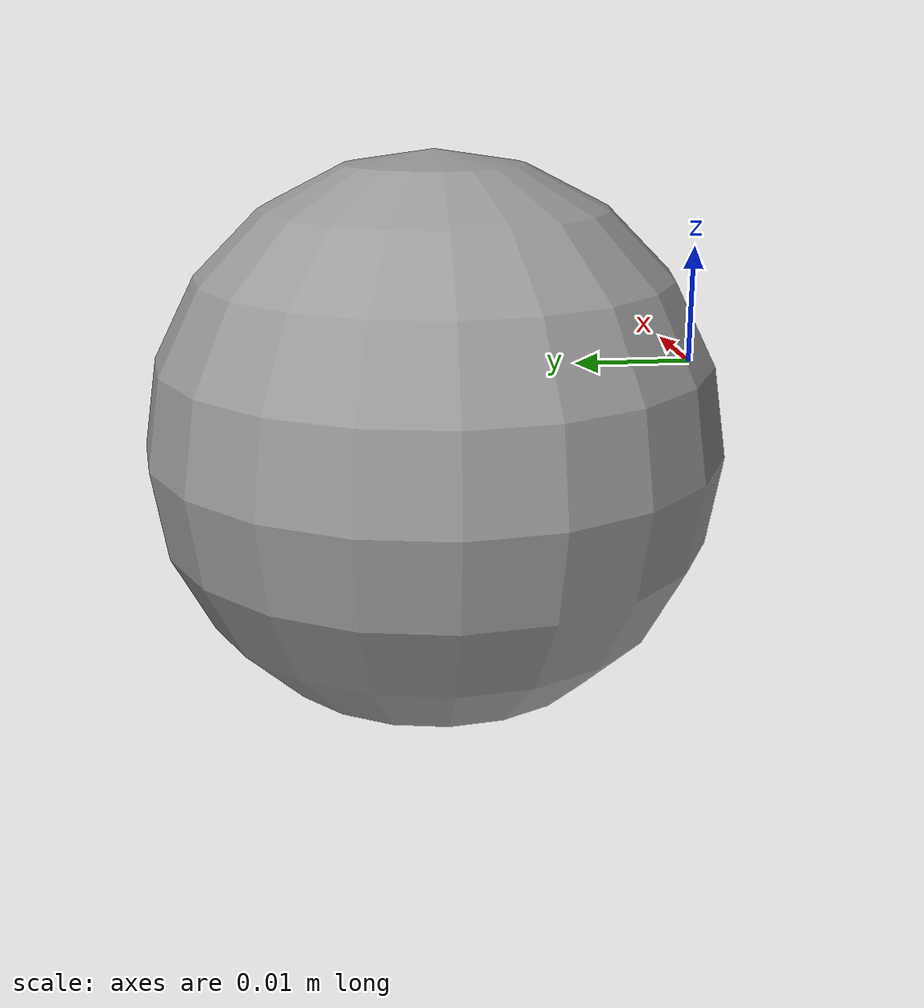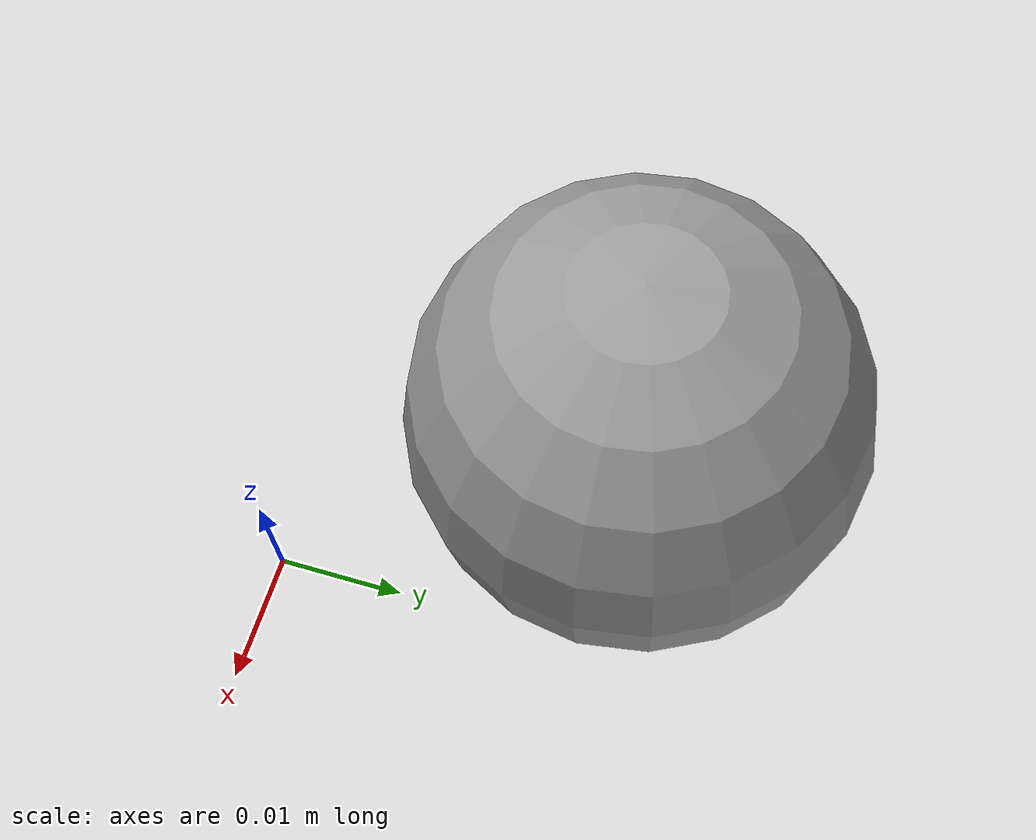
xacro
<?xml version="1.0"?>
<robot name="servbot" xmlns:xacro="http://www.ros.org/wiki/xacro">

  <!-- Base link -->
  <link name="base_link"/>
  <link name="left_wheel_link"/>
  <link name="right_wheel_link"/>

  <!-- Left wheel joint -->
  <joint name="left_wheel_joint" type="continuous">
    <parent link="base_link"/>
    <child link="left_wheel_link"/>
    <origin xyz="-0.054 -0.121  0" rpy="0 0 0"/>
    <axis xyz="0 1 0"/>
  </joint>

  <!-- Right wheel joint -->
  <joint name="right_wheel_joint" type="continuous">
    <parent link="base_link"/>
    <child link="right_wheel_link"/>
    <origin xyz="-0.054 0.121 0" rpy="0 0 0"/>
    <axis xyz="0 1 0"/>
  </joint>

  <link name="imu_link">
    <visual>
      <origin xyz="-0.021 0.024 0" rpy="0 0 0"/>
      <geometry>
        <sphere radius="0.02"/>
      </geometry>
      <material name="gray"/>
    </visual>
  </link>

  <joint name="imu_joint" type="fixed">
    <parent link="base_link"/>
    <child link="imu_link"/>
  </joint>

  <!-- ROS 2 Control Plugin -->
  <ros2_control name="DiffDriveHardware" type="system">
    <hardware>
      <plugin>diffdrive_hardware/DiffDriveHardware</plugin>
      <param name="serial_port">/dev/ttyACM0</param>
      <param name="baud_rate">115200</param>
      <param name="wheel_radius">0.0325</param>
      <param name="wheel_separation">0.252</param>
      <param name="ticks_per_revolution">400</param>
    </hardware>
    <joint name="left_wheel_joint">
      <command_interface name="velocity"/>
      <state_interface name="position"/>
      <state_interface name="velocity"/>
    </joint>
    <joint name="right_wheel_joint">
      <command_interface name="velocity"/>
      <state_interface name="position"/>
      <state_interface name="velocity"/>
    </joint>
    <sensor name="imu_sensor">
      <state_interface name="linear_acceleration.x"/>
      <state_interface name="linear_acceleration.y"/>
      <state_interface name="linear_acceleration.z"/>
      <state_interface name="angular_velocity.x"/>
      <state_interface name="angular_velocity.y"/>
      <state_interface name="angular_velocity.z"/>
    </sensor>
  </ros2_control>

</robot>
